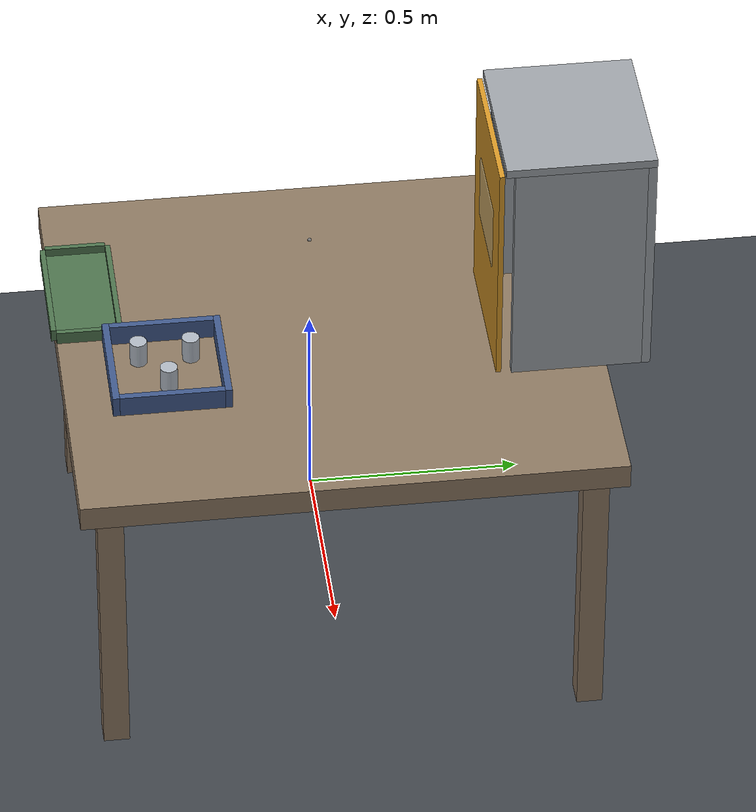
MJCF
<mujoco model="tendwright_cell">
  <compiler angle="radian" autolimits="true"/>
  <option integrator="implicitfast" cone="elliptic" impratio="10" timestep="0.002"/>

  <visual>
    <headlight ambient="0.4 0.4 0.4" diffuse="0.6 0.6 0.6"/>
    <global azimuth="150" elevation="-25" offwidth="1280" offheight="720"/>
  </visual>

  <asset>
    <texture type="skybox" builtin="gradient" rgb1="0.35 0.45 0.55" rgb2="0.08 0.10 0.14" width="32" height="512"/>
    <texture name="floor_tex" type="2d" builtin="checker" rgb1="0.22 0.24 0.26" rgb2="0.28 0.30 0.32"
      width="300" height="300"/>
    <material name="floor_mat" texture="floor_tex" texrepeat="6 6" reflectance="0.05"/>
    <material name="table_mat" rgba="0.55 0.47 0.38 1"/>
    <material name="bin_mat" rgba="0.25 0.35 0.55 1"/>
    <material name="cnc_mat" rgba="0.62 0.64 0.66 1"/>
    <material name="cnc_window_mat" rgba="0.85 0.90 0.95 0.35"/>
    <material name="door_mat" rgba="0.85 0.60 0.15 1"/>
    <material name="fixture_mat" rgba="0.30 0.30 0.32 1"/>
    <material name="tray_mat" rgba="0.30 0.45 0.30 1"/>
    <material name="blank_mat" rgba="0.69 0.72 0.76 1"/>
  </asset>

  <worldbody>
    <light pos="0.5 -0.5 2.5" dir="-0.15 0.15 -1" diffuse="0.7 0.7 0.7"/>
    <camera name="overview" pos="1.75 -1.15 1.55" xyaxes="0.6 0.8 0 -0.28 0.21 0.94"/>

    <geom name="floor" type="plane" size="4 4 0.05" material="floor_mat"/>

    <!-- Work table: top surface at z = 0.74 -->
    <geom name="table_top" type="box" pos="0.35 0.0 0.71" size="0.55 0.62 0.03" material="table_mat"/>
    <geom name="table_leg1" type="box" pos="-0.13 -0.55 0.34" size="0.03 0.03 0.34" material="table_mat"
      contype="0" conaffinity="0"/>
    <geom name="table_leg2" type="box" pos="0.83 -0.55 0.34" size="0.03 0.03 0.34" material="table_mat"
      contype="0" conaffinity="0"/>
    <geom name="table_leg3" type="box" pos="-0.13 0.55 0.34" size="0.03 0.03 0.34" material="table_mat"
      contype="0" conaffinity="0"/>
    <geom name="table_leg4" type="box" pos="0.83 0.55 0.34" size="0.03 0.03 0.34" material="table_mat"
      contype="0" conaffinity="0"/>

    <!-- Arm mounts here (sim/scene.py attaches the UR5e + gripper) -->
    <site name="arm_mount" pos="0 0 0.74" size="0.005"/>

    <!-- Parts bin: interior x 0.33..0.57, y -0.50..-0.26, wall top at 0.79 -->
    <geom name="bin_wall_n" type="box" pos="0.45 -0.252 0.765" size="0.136 0.008 0.025" material="bin_mat"/>
    <geom name="bin_wall_s" type="box" pos="0.45 -0.508 0.765" size="0.136 0.008 0.025" material="bin_mat"/>
    <geom name="bin_wall_w" type="box" pos="0.322 -0.38 0.765" size="0.008 0.12 0.025" material="bin_mat"/>
    <geom name="bin_wall_e" type="box" pos="0.578 -0.38 0.765" size="0.008 0.12 0.025" material="bin_mat"/>

    <!-- Mock CNC enclosure: interior x 0.18..0.52, y 0.40..0.70, z 0.74..1.30
         (tall enough for the wrist to reach the fixture top-down) -->
    <geom name="cnc_wall_w" type="box" pos="0.17 0.55 1.02" size="0.01 0.15 0.28" material="cnc_mat"/>
    <geom name="cnc_wall_e" type="box" pos="0.53 0.55 1.02" size="0.01 0.15 0.28" material="cnc_mat"/>
    <geom name="cnc_wall_back" type="box" pos="0.35 0.71 1.02" size="0.19 0.01 0.28" material="cnc_mat"/>
    <geom name="cnc_roof" type="box" pos="0.35 0.55 1.31" size="0.19 0.17 0.01" material="cnc_mat"/>
    <!-- Decorative spindle stub hanging from the roof, behind the fixture -->
    <geom name="cnc_spindle" type="cylinder" pos="0.35 0.62 1.22" size="0.025 0.08" material="fixture_mat"
      contype="0" conaffinity="0"/>

    <!-- Sliding door covering the front opening (y = 0.371 plane), slides sideways (-x) -->
    <body name="cnc_door" pos="0.35 0.371 1.02">
      <joint name="cnc_door_joint" type="slide" axis="-1 0 0" range="0 0.40" damping="60"/>
      <geom name="cnc_door_panel" type="box" size="0.185 0.006 0.28" material="door_mat"/>
      <geom name="cnc_door_window" type="box" pos="0 -0.007 0.04" size="0.10 0.001 0.08" material="cnc_window_mat"
        contype="0" conaffinity="0"/>
    </body>

    <!-- Vise-style fixture inside the CNC: part seat top at z = 0.80 -->
    <body name="fixture" pos="0.35 0.50 0">
      <geom name="fixture_base" type="box" pos="0 0 0.77" size="0.055 0.055 0.03" material="fixture_mat"/>
      <geom name="fixture_jaw_front" type="box" pos="0 -0.038 0.825" size="0.03 0.012 0.025" material="fixture_mat"/>
      <geom name="fixture_jaw_back" type="box" pos="0 0.038 0.825" size="0.03 0.012 0.025" material="fixture_mat"/>
      <site name="fixture_seat" pos="0 0 0.83" size="0.004"/>
    </body>

    <!-- Outfeed tray for finished parts -->
    <geom name="tray_pad" type="box" pos="0.15 -0.55 0.745" size="0.15 0.07 0.005" material="tray_mat"/>
    <geom name="tray_rim_n" type="box" pos="0.15 -0.474 0.755" size="0.15 0.006 0.015" material="tray_mat"/>
    <geom name="tray_rim_s" type="box" pos="0.15 -0.626 0.755" size="0.15 0.006 0.015" material="tray_mat"/>
    <geom name="tray_rim_w" type="box" pos="-0.006 -0.55 0.755" size="0.006 0.07 0.015" material="tray_mat"/>
    <geom name="tray_rim_e" type="box" pos="0.306 -0.55 0.755" size="0.006 0.07 0.015" material="tray_mat"/>

    <!-- Cylindrical blanks (Ø40 x 60 mm) standing in the bin -->
    <body name="part0" pos="0.40 -0.44 0.771">
      <freejoint name="part0_free"/>
      <geom name="part0_geom" type="cylinder" size="0.02 0.03" mass="0.3" material="blank_mat"
        friction="0.8 0.01 0.001" condim="4"/>
    </body>
    <body name="part1" pos="0.50 -0.38 0.771">
      <freejoint name="part1_free"/>
      <geom name="part1_geom" type="cylinder" size="0.02 0.03" mass="0.3" material="blank_mat"
        friction="0.8 0.01 0.001" condim="4"/>
    </body>
    <body name="part2" pos="0.40 -0.32 0.771">
      <freejoint name="part2_free"/>
      <geom name="part2_geom" type="cylinder" size="0.02 0.03" mass="0.3" material="blank_mat"
        friction="0.8 0.01 0.001" condim="4"/>
    </body>
  </worldbody>

  <actuator>
    <position name="cnc_door_actuator" joint="cnc_door_joint" ctrlrange="0 0.40" kp="400" kv="40"/>
  </actuator>

  <equality>
    <!-- Fixture clamp welds, one per part, toggled by the cycle script -->
    <weld name="clamp_part0" body1="fixture" body2="part0" active="false"/>
    <weld name="clamp_part1" body1="fixture" body2="part1" active="false"/>
    <weld name="clamp_part2" body1="fixture" body2="part2" active="false"/>
  </equality>
</mujoco>
